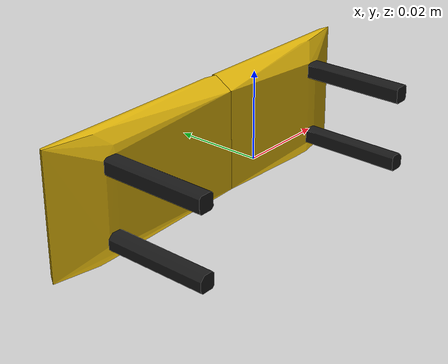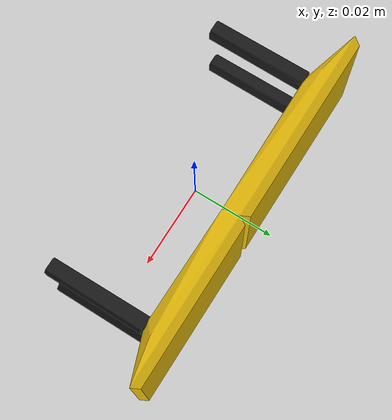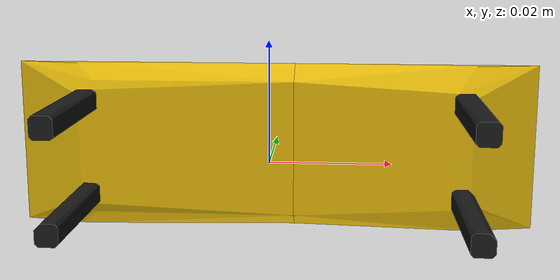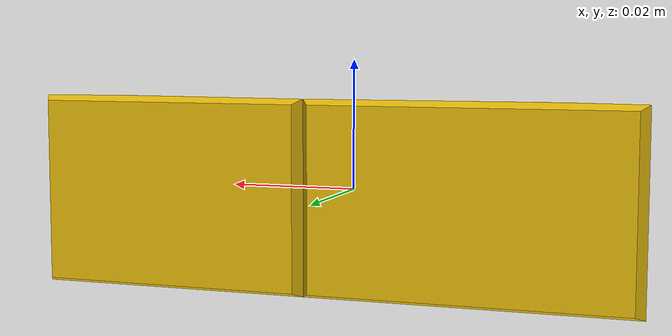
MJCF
<mujoco model="shapenet36-4">
  <asset>
    <mesh file="meshes/shapenet36-4/shapenet36-4_0.stl" name="shapenet36-4_0" scale="0.1 0.1 0.1"/>
    <mesh file="meshes/shapenet36-4/shapenet36-4_1.stl" name="shapenet36-4_1" scale="0.1 0.1 0.1"/>
    <mesh file="meshes/shapenet36-4/shapenet36-4_2.stl" name="shapenet36-4_2" scale="0.1 0.1 0.1"/>
    <mesh file="meshes/shapenet36-4/shapenet36-4_3.stl" name="shapenet36-4_3" scale="0.1 0.1 0.1"/>
    <mesh file="meshes/shapenet36-4/shapenet36-4_4.stl" name="shapenet36-4_4" scale="0.1 0.1 0.1"/>
    <mesh file="meshes/shapenet36-4/shapenet36-4_5.stl" name="shapenet36-4_5" scale="0.1 0.1 0.1"/>
  </asset>
  <worldbody>
    <body>
      <body name="collision">
        <geom pos="0 0 0" mesh="shapenet36-4_0" type="mesh" solimp="0.998 0.998 0.001" solref="0.001 1" density="100" friction="0.95 0.3 0.1" rgba="0.1 0.1 0.1 1" group="1" condim="4"/>
        <geom pos="0 0 0" mesh="shapenet36-4_1" type="mesh" solimp="0.998 0.998 0.001" solref="0.001 1" density="100" friction="0.95 0.3 0.1" rgba="0.1 0.1 0.1 1" group="1" condim="4"/>
        <geom pos="0 0 0" mesh="shapenet36-4_2" type="mesh" solimp="0.998 0.998 0.001" solref="0.001 1" density="100" friction="0.95 0.3 0.1" rgba="0.1 0.1 0.1 1" group="1" condim="4"/>
        <geom pos="0 0 0" mesh="shapenet36-4_3" type="mesh" solimp="0.998 0.998 0.001" solref="0.001 1" density="100" friction="0.95 0.3 0.1" rgba="0.1 0.1 0.1 1" group="1" condim="4"/>
        <geom pos="0 0 0" mesh="shapenet36-4_4" type="mesh" solimp="0.998 0.998 0.001" solref="0.001 1" density="100" friction="0.95 0.3 0.1" rgba="0.89 0.72 0.04 1" group="1" condim="4"/>
        <geom pos="0 0 0" mesh="shapenet36-4_5" type="mesh" solimp="0.998 0.998 0.001" solref="0.001 1" density="100" friction="0.95 0.3 0.1" rgba="0.89 0.72 0.04 1" group="1" condim="4"/>
      </body>
      <body name="visual">
        <geom pos="0 0 0" mesh="shapenet36-4_0" type="mesh" rgba="0 1 0 1" conaffinity="0" contype="0" group="0" mass="0.0001"/>
        <geom pos="0 0 0" mesh="shapenet36-4_1" type="mesh" rgba="0 1 0 1" conaffinity="0" contype="0" group="0" mass="0.0001"/>
        <geom pos="0 0 0" mesh="shapenet36-4_2" type="mesh" rgba="0 1 0 1" conaffinity="0" contype="0" group="0" mass="0.0001"/>
        <geom pos="0 0 0" mesh="shapenet36-4_3" type="mesh" rgba="0 1 0 1" conaffinity="0" contype="0" group="0" mass="0.0001"/>
        <geom pos="0 0 0" mesh="shapenet36-4_4" type="mesh" rgba="0 1 0 1" conaffinity="0" contype="0" group="0" mass="0.0001"/>
        <geom pos="0 0 0" mesh="shapenet36-4_5" type="mesh" rgba="0 1 0 1" conaffinity="0" contype="0" group="0" mass="0.0001"/>
      </body>
      <site rgba="0 0 0 0" size="0.005" pos="0 0 -0.06" name="bottom_site"/>
      <site rgba="0 0 0 0" size="0.005" pos="0 0 0.04" name="top_site"/>
      <site rgba="0 0 0 0" size="0.005" pos="0.025 0.025 0" name="horizontal_radius_site"/>
    </body>
  </worldbody>
</mujoco>
